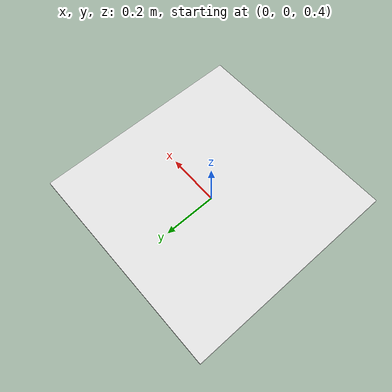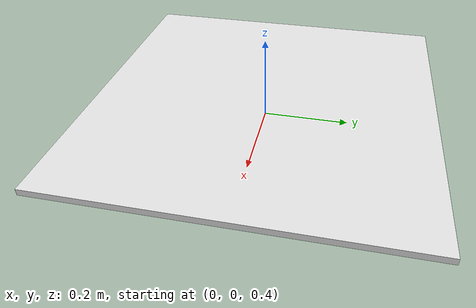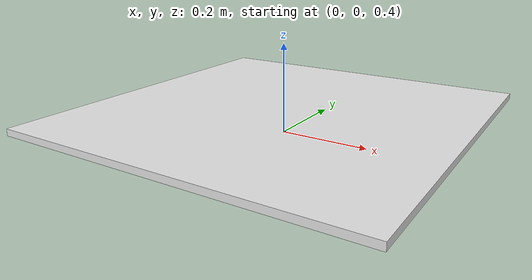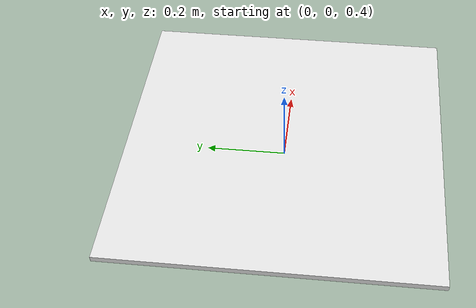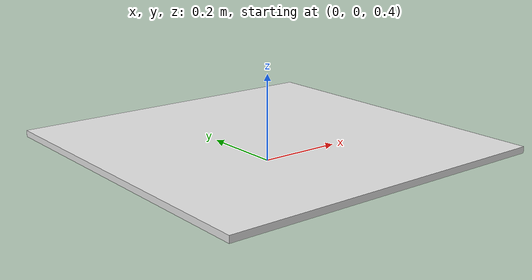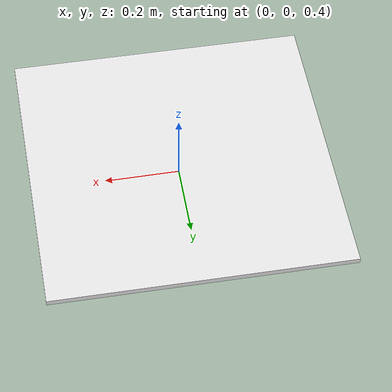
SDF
<?xml version="1.0"?>
<sdf version="1.7">

  <model name="table_top">
  <link name="table_top_link">
    <inertial>
      <mass>18.70</mass>
      <pose>0.0 0.0 0.445 0 0 0</pose>
      <inertia>
          <ixx>0.619</ixx>
          <ixy>0</ixy>
          <ixz>0</ixz>
          <iyy>0.374</iyy>
          <iyz>0</iyz>
          <izz>0.99</izz>
      </inertia>
    </inertial>
    <visual name="bottom">
      <pose>0.0 0.0 0.445 0 0 0</pose>
      <geometry>
        <box>
          <size>0.8 0.8 0.015</size>
        </box>
      </geometry>
      <material>
        <diffuse>0.9 0.9 0.9 1.0</diffuse>
      </material>
    </visual>
    <collision name="bottom">
      <pose>0.0 0.0 0.445 0 0 0</pose>
      <geometry>
        <box>
          <size>0.8 0.8 0.015</size>
        </box>
      </geometry>
      <drake:proximity_properties>
        <drake:compliant_hydroelastic/>
        <drake:hydroelastic_modulus>1.0e8</drake:hydroelastic_modulus>
      </drake:proximity_properties>
    </collision>
  </link>
  <frame name="table_top_center">
    <pose relative_to="table_top_link">0 0 0.4 0 0 0</pose>
  </frame>
</model>

</sdf>
